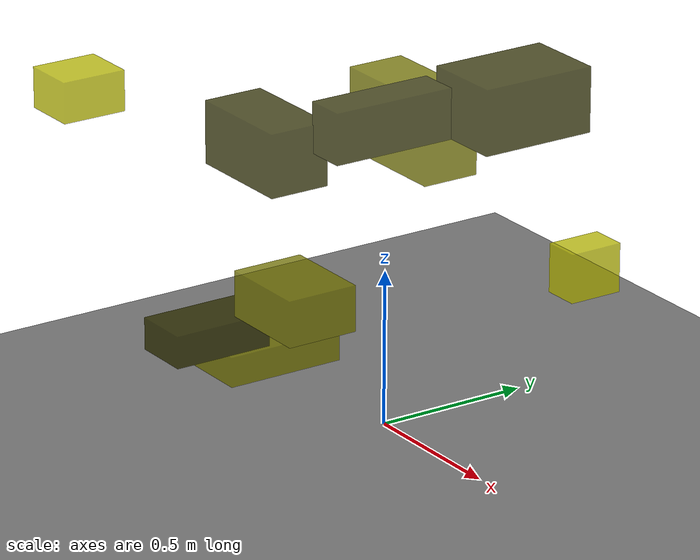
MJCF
<?xml version="1.0"?>
<mujoco model="obstacle_scene">
  <compiler angle="radian" coordinate="local"/>
  <option timestep="0.001" gravity="0 0 -9.81"/>

  <asset>
    <material name="obstacle_mat" rgba="0.8 0.8 0.0 0.8"/>
    <material name="ground_mat" rgba="0.5 0.5 0.5 1"/>
  </asset>

  <worldbody>
    <!-- Ground plane -->
    <geom name="ground" type="plane" size="3 3 0.1" material="ground_mat"/>

    <!-- Obstacles -->
    <body name="obstacle_0" pos="0.604454 -0.427326 1.251223">
      <geom name="obs_0" type="box" size="0.062540 0.194082 0.077373" rgba="0.2 0.2 0.0 0.8"/>
    </body>
    <body name="obstacle_1" pos="0.099772 0.029112 1.006831">
      <geom name="obs_1" type="box" size="0.196978 0.092146 0.128767" rgba="0.5 0.5 0.0 0.8"/>
    </body>
    <body name="obstacle_2" pos="-0.163086 0.508294 0.889919">
      <geom name="obs_2" type="box" size="0.097756 0.187634 0.094199" rgba="0.8 0.8 0.0 0.8"/>
    </body>
    <body name="obstacle_3" pos="-0.151007 -0.539750 0.375077">
      <geom name="obs_3" type="box" size="0.092592 0.161838 0.051351" rgba="0.2 0.2 0.0 0.8"/>
    </body>
    <body name="obstacle_4" pos="-0.481286 -0.148820 0.137994">
      <geom name="obs_4" type="box" size="0.164211 0.197977 0.048972" rgba="0.5 0.5 0.0 0.8"/>
    </body>
    <body name="obstacle_5" pos="-0.276129 -0.892849 1.177616">
      <geom name="obs_5" type="box" size="0.086285 0.102276 0.063193" rgba="0.8 0.8 0.0 0.8"/>
    </body>
    <body name="obstacle_6" pos="0.651265 -0.005660 1.245075">
      <geom name="obs_6" type="box" size="0.125316 0.181029 0.099727" rgba="0.2 0.2 0.0 0.8"/>
    </body>
    <body name="obstacle_7" pos="0.609570 -0.726631 0.771665">
      <geom name="obs_7" type="box" size="0.141769 0.110932 0.070067" rgba="0.5 0.5 0.0 0.8"/>
    </body>
    <body name="obstacle_8" pos="0.639987 0.268627 0.663814">
      <geom name="obs_8" type="box" size="0.056810 0.085663 0.076448" rgba="0.8 0.8 0.0 0.8"/>
    </body>
    <body name="obstacle_9" pos="0.373918 -0.668018 1.162574">
      <geom name="obs_9" type="box" size="0.172739 0.093403 0.095730" rgba="0.2 0.2 0.0 0.8"/>
    </body>
  </worldbody>
</mujoco>
